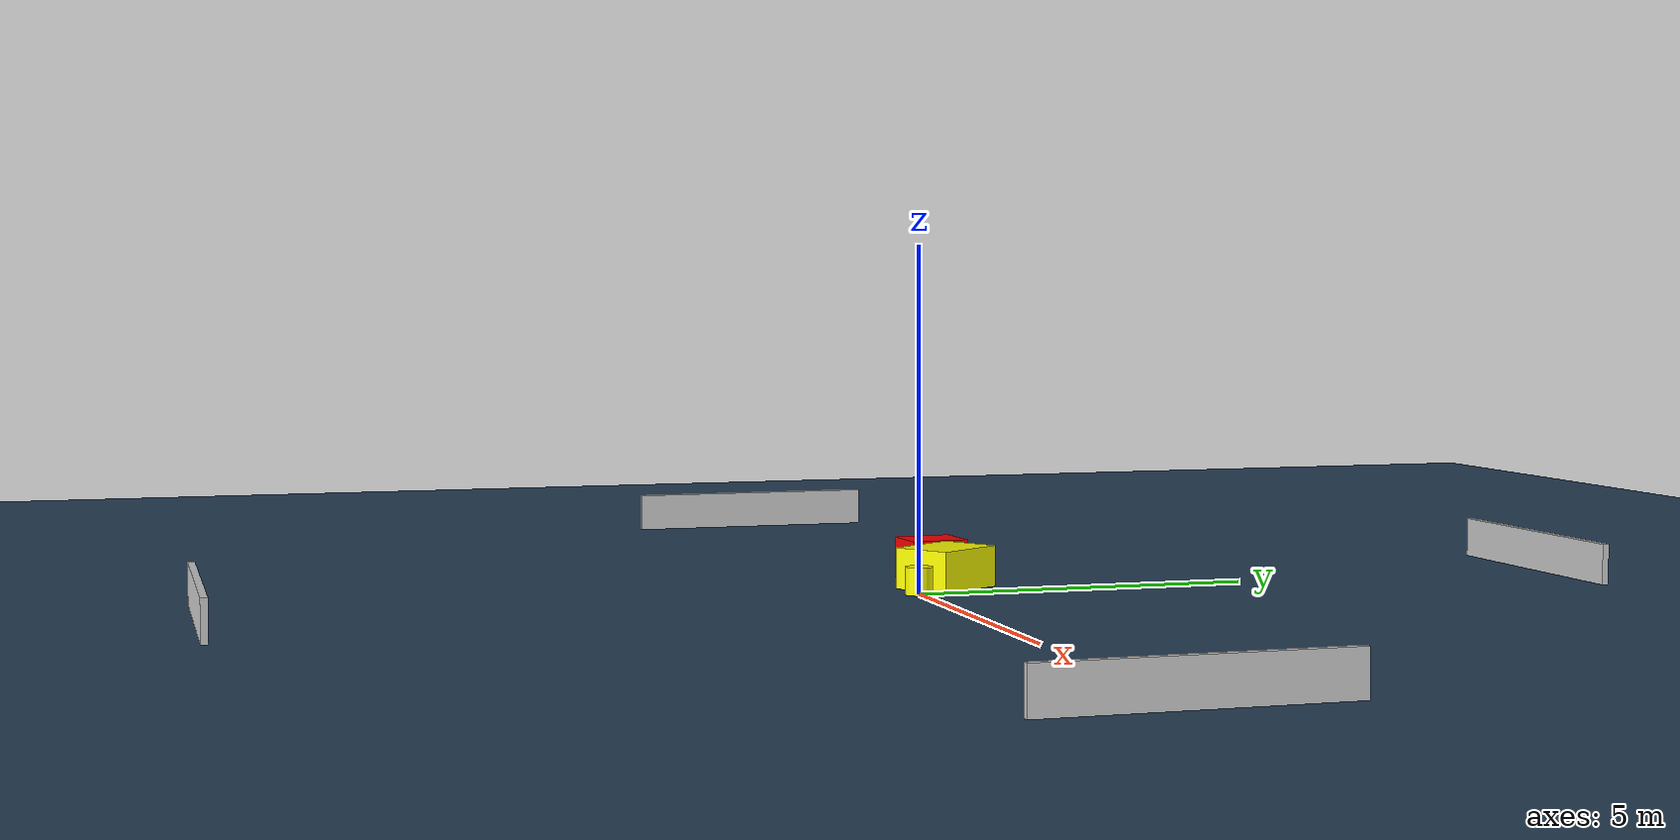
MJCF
<?xml version="1.0" ?>
<mujoco model="generated_environment">
  <option timestep="0.01" integrator="RK4" cone="elliptic"/>
  <default>
    <geom density="1"/>
  </default>
  <asset>
    <texture builtin="gradient" height="3072" name="skybox" rgb1="0.3 0.5 0.7" rgb2="0 0 0" type="skybox" width="512"/>
    <texture builtin="checker" height="300" name="groundplane" rgb1="0.2 0.3 0.4" rgb2="0.1 0.2 0.3" type="2d" width="300"/>
    <material name="groundplane" reflectance="0.2" texrepeat="5 5" texture="groundplane"/>
  </asset>
  <worldbody>
    <light dir="0 0 -1" directional="true" pos="0 0 1.5"/>
    <geom condim="3" friction="0.5 0.005 0.001" material="groundplane" name="floor" pos="0 0 0" size="0 0 0.05" type="plane"/>
    <body name="walls">
      <geom name="wall_1" condim="4" pos="-10.0 0.0 0.3" rgba="0.800000011920929 0.800000011920929 0.800000011920929 1.0" size="0.05 2.0 0.3" type="box"/>
      <geom name="wall_2" condim="4" pos="10.0 0.0 0.3" rgba="0.800000011920929 0.800000011920929 0.800000011920929 1.0" size="0.05 2.0 0.3" type="box"/>
      <geom name="wall_3" condim="4" pos="0.0 -10.0 0.3" rgba="0.800000011920929 0.800000011920929 0.800000011920929 1.0" size="2.0 0.05 0.3" type="box"/>
      <geom name="wall_4" condim="4" pos="0.0 10.0 0.3" rgba="0.800000011920929 0.800000011920929 0.800000011920929 1.0" size="2.0 0.05 0.3" type="box"/>
    </body>
    <body name="robot">
      <joint name="joint_x" type="slide" pos="0 0 0" axis="1 0 0"/>
      <joint name="joint_y" type="slide" pos="0 0 0" axis="0 1 0"/>
      <geom name="robot" type="cylinder" pos="0.0 0.0 0.2" size="0.2 0.2 0.0" mass="5.0" friction="1.0 0.005 0.0001" condim="4" rgba="1.0 1.0 0.0 1.0"/>
    </body>
    <body name="obstacle_1_movable">
      <geom name="obstacle_1_movable" condim="4" pos="-0.6508753478258478 0.6153498895555601 0.3" euler="0 0 123.1100800254151" friction="0.0 0.005 0.001" rgba="1.0 1.0 0.0 1.0" size="0.5802931404382501 0.4701323090894859 0.3" type="box" mass="0.1"/>
      <joint type="free"/>
    </body>
    <body name="obstacle_2_static">
      <geom name="obstacle_2_static" condim="4" pos="-1.7994920709031765 0.7544668706216783 0.3" euler="0 0 94.62875894844032" friction="0.0 0.005 0.001" rgba="1.0 0.0 0.0 1.0" size="0.4313230850216026 0.37924419802440656 0.3" type="box"/>
    </body>
  </worldbody>
  <actuator>
    <motor name="actuator_x" joint="joint_x" gear="1" ctrlrange="-1 1"/>
    <motor name="actuator_y" joint="joint_y" gear="1" ctrlrange="-1 1"/>
  </actuator>
</mujoco>
